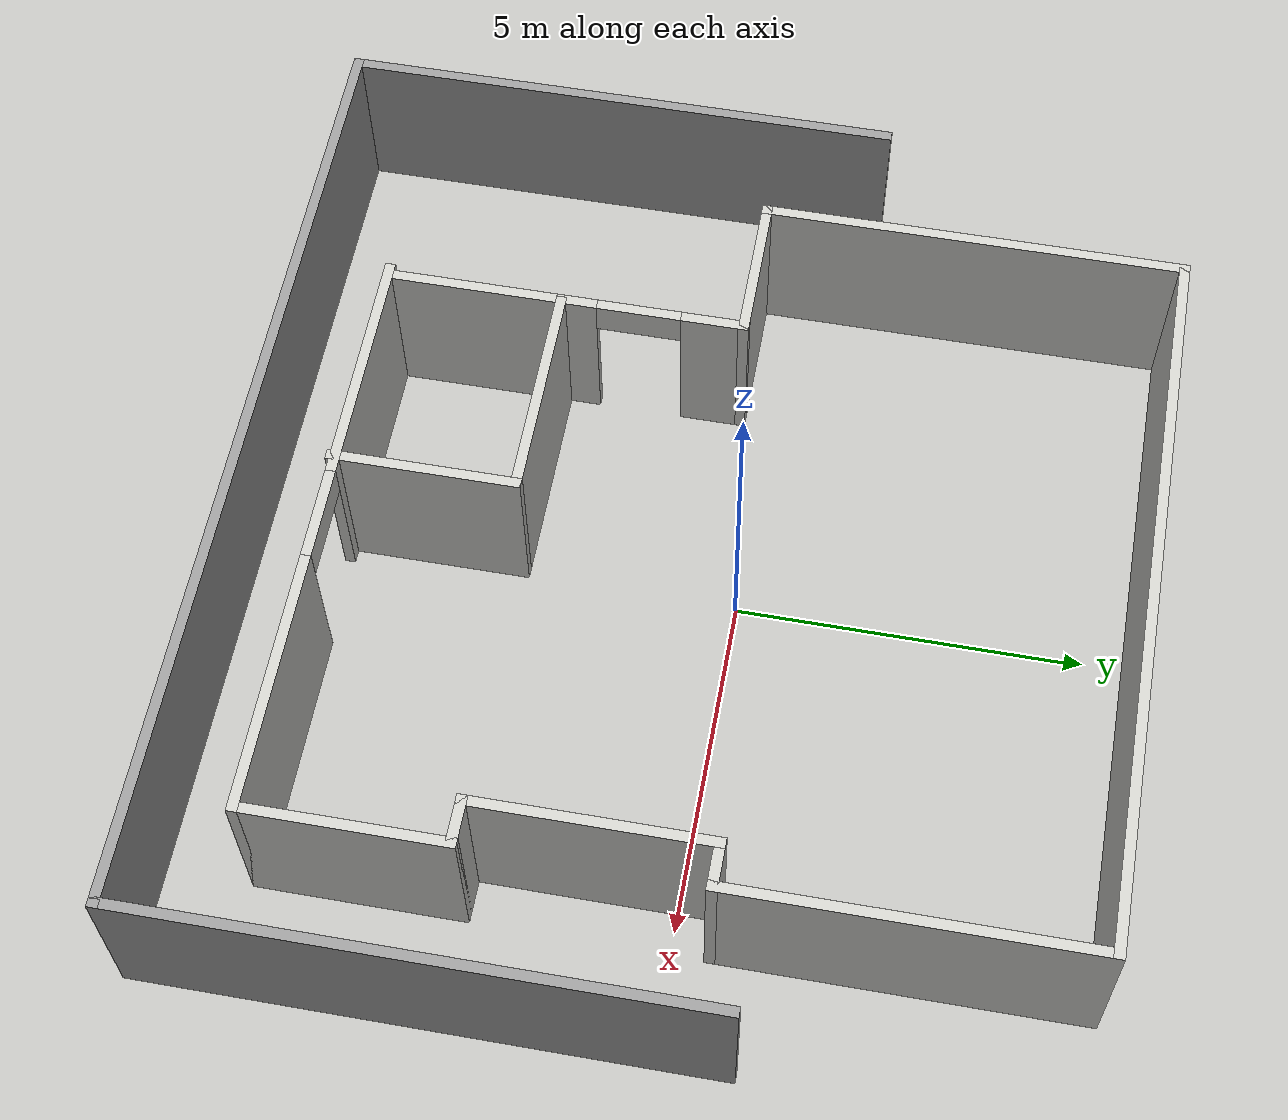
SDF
<?xml version='1.0'?>
<sdf version='1.6'>
  <model name='Genova_office'>
    <pose frame=''>-0.089095 -0.704867 0 0 -0 0</pose>
    <link name='Wall_0'>
      <pose frame=''>-3.14346 -2.31697 0 0 -0 1.5708</pose>
      <visual name='Wall_0_Visual_0'>
        <pose frame=''>-1.10322 0 1.25 0 -0 0</pose>
        <geometry>
          <box>
            <size>3.04356 0.15 2.5</size>
          </box>
        </geometry>
        <material>
          <script>
            <uri>file://media/materials/scripts/gazebo.material</uri>
            <name>Gazebo/CeilingTiled</name>
          </script>
          <ambient>1 1 1 1</ambient>
        </material>
        <meta>
          <layer>0</layer>
        </meta>
      </visual>
      <collision name='Wall_0_Collision_0'>
        <geometry>
          <box>
            <size>3.04356 0.15 2.5</size>
          </box>
        </geometry>
        <pose frame=''>-1.10322 0 1.25 0 -0 0</pose>
      </collision>
      <visual name='Wall_0_Visual_1'>
        <pose frame=''>2.13278 0 1.25 0 -0 0</pose>
        <geometry>
          <box>
            <size>0.984438 0.15 2.5</size>
          </box>
        </geometry>
        <material>
          <script>
            <uri>file://media/materials/scripts/gazebo.material</uri>
            <name>Gazebo/CeilingTiled</name>
          </script>
          <ambient>1 1 1 1</ambient>
        </material>
        <meta>
          <layer>0</layer>
        </meta>
      </visual>
      <collision name='Wall_0_Collision_1'>
        <geometry>
          <box>
            <size>0.984438 0.15 2.5</size>
          </box>
        </geometry>
        <pose frame=''>2.13278 0 1.25 0 -0 0</pose>
      </collision>
      <visual name='Wall_0_Visual_2'>
        <pose frame=''>1.02956 0 2.25 0 -0 0</pose>
        <geometry>
          <box>
            <size>1.222 0.15 0.5</size>
          </box>
        </geometry>
        <material>
          <script>
            <uri>file://media/materials/scripts/gazebo.material</uri>
            <name>Gazebo/CeilingTiled</name>
          </script>
          <ambient>1 1 1 1</ambient>
        </material>
        <meta>
          <layer>0</layer>
        </meta>
      </visual>
      <collision name='Wall_0_Collision_2'>
        <geometry>
          <box>
            <size>1.222 0.15 0.5</size>
          </box>
        </geometry>
        <pose frame=''>1.02956 0 2.25 0 -0 0</pose>
      </collision>
    </link>
    <link name='Wall_1'>
      <collision name='Wall_1_Collision'>
        <geometry>
          <box>
            <size>2.25 0.15 2.5</size>
          </box>
        </geometry>
        <pose frame=''>0 0 1.25 0 -0 0</pose>
      </collision>
      <visual name='Wall_1_Visual'>
        <pose frame=''>0 0 1.25 0 -0 0</pose>
        <geometry>
          <box>
            <size>2.25 0.15 2.5</size>
          </box>
        </geometry>
        <material>
          <script>
            <uri>file://media/materials/scripts/gazebo.material</uri>
            <name>Gazebo/CeilingTiled</name>
          </script>
          <ambient>1 1 1 1</ambient>
        </material>
        <meta>
          <layer>0</layer>
        </meta>
      </visual>
      <pose frame=''>-4.19346 0.233027 0 0 -0 3.14159</pose>
    </link>
    <link name='Wall_11'>
      <collision name='Wall_11_Collision'>
        <geometry>
          <box>
            <size>3.25 0.15 2.5</size>
          </box>
        </geometry>
        <pose frame=''>0 0 1.25 0 -0 0</pose>
      </collision>
      <visual name='Wall_11_Visual'>
        <pose frame=''>0 0 1.25 0 -0 0</pose>
        <geometry>
          <box>
            <size>3.25 0.15 2.5</size>
          </box>
        </geometry>
        <material>
          <script>
            <uri>file://media/materials/scripts/gazebo.material</uri>
            <name>Gazebo/CeilingTiled</name>
          </script>
          <ambient>1 1 1 1</ambient>
        </material>
        <meta>
          <layer>0</layer>
        </meta>
      </visual>
      <pose frame=''>-1.55848 -2.41837 0 0 -0 0</pose>
    </link>
    <link name='Wall_12'>
      <collision name='Wall_12_Collision'>
        <geometry>
          <box>
            <size>2.75 0.15 2.5</size>
          </box>
        </geometry>
        <pose frame=''>0 0 1.25 0 -0 0</pose>
      </collision>
      <visual name='Wall_12_Visual'>
        <pose frame=''>0 0 1.25 0 -0 0</pose>
        <geometry>
          <box>
            <size>2.75 0.15 2.5</size>
          </box>
        </geometry>
        <material>
          <script>
            <uri>file://media/materials/scripts/gazebo.material</uri>
            <name>Gazebo/CeilingTiled</name>
          </script>
          <ambient>1 1 1 1</ambient>
        </material>
        <meta>
          <layer>0</layer>
        </meta>
      </visual>
      <pose frame=''>-0.008479 -3.71836 0 0 -0 -1.5708</pose>
    </link>
    <link name='Wall_14'>
      <collision name='Wall_14_Collision'>
        <geometry>
          <box>
            <size>8.25 0.15 2.5</size>
          </box>
        </geometry>
        <pose frame=''>0 0 1.25 0 -0 0</pose>
      </collision>
      <visual name='Wall_14_Visual'>
        <pose frame=''>0 0 1.25 0 -0 0</pose>
        <geometry>
          <box>
            <size>8.25 0.15 2.5</size>
          </box>
        </geometry>
        <material>
          <script>
            <uri>file://media/materials/scripts/gazebo.material</uri>
            <name>Gazebo/Grey</name>
          </script>
          <ambient>1 1 1 1</ambient>
        </material>
        <meta>
          <layer>0</layer>
        </meta>
      </visual>
      <pose frame=''>-6.925 -2.28303 0 0 -0 -1.5708</pose>
    </link>
    <link name='Wall_15'>
      <collision name='Wall_15_Collision'>
        <geometry>
          <box>
            <size>14 0.15 2.5</size>
          </box>
        </geometry>
        <pose frame=''>0 0 1.25 0 -0 0</pose>
      </collision>
      <visual name='Wall_15_Visual'>
        <pose frame=''>0 0 1.25 0 -0 0</pose>
        <geometry>
          <box>
            <size>14 0.15 2.5</size>
          </box>
        </geometry>
        <material>
          <script>
            <uri>file://media/materials/scripts/gazebo.material</uri>
            <name>Gazebo/Grey</name>
          </script>
          <ambient>1 1 1 1</ambient>
        </material>
        <meta>
          <layer>0</layer>
        </meta>
      </visual>
      <pose frame=''>0 -6.33303 0 0 -0 0</pose>
    </link>
    <link name='Wall_16'>
      <collision name='Wall_16_Collision'>
        <geometry>
          <box>
            <size>8.25 0.15 2.5</size>
          </box>
        </geometry>
        <pose frame=''>0 0 1.25 0 -0 0</pose>
      </collision>
      <visual name='Wall_16_Visual'>
        <pose frame=''>0 0 1.25 0 -0 0</pose>
        <geometry>
          <box>
            <size>8.25 0.15 2.5</size>
          </box>
        </geometry>
        <material>
          <script>
            <uri>file://media/materials/scripts/gazebo.material</uri>
            <name>Gazebo/Grey</name>
          </script>
          <ambient>1 1 1 1</ambient>
        </material>
        <meta>
          <layer>0</layer>
        </meta>
      </visual>
      <pose frame=''>6.925 -2.28303 0 0 -0 1.5708</pose>
    </link>
    <link name='Wall_2'>
      <collision name='Wall_2_Collision'>
        <geometry>
          <box>
            <size>6.25 0.15 2.5</size>
          </box>
        </geometry>
        <pose frame=''>0 0 1.25 0 -0 0</pose>
      </collision>
      <visual name='Wall_2_Visual'>
        <pose frame=''>0 0 1.25 0 -0 0</pose>
        <geometry>
          <box>
            <size>6.25 0.15 2.5</size>
          </box>
        </geometry>
        <material>
          <script>
            <uri>file://media/materials/scripts/gazebo.material</uri>
            <name>Gazebo/CeilingTiled</name>
          </script>
          <ambient>1 1 1 1</ambient>
        </material>
        <meta>
          <layer>0</layer>
        </meta>
      </visual>
      <pose frame=''>-5.24346 3.28303 0 0 -0 1.5708</pose>
    </link>
    <link name='Wall_3'>
      <collision name='Wall_3_Collision'>
        <geometry>
          <box>
            <size>10.75 0.15 2.5</size>
          </box>
        </geometry>
        <pose frame=''>0 0 1.25 0 -0 0</pose>
      </collision>
      <visual name='Wall_3_Visual'>
        <pose frame=''>0 0 1.25 0 -0 0</pose>
        <geometry>
          <box>
            <size>10.75 0.15 2.5</size>
          </box>
        </geometry>
        <material>
          <script>
            <uri>file://media/materials/scripts/gazebo.material</uri>
            <name>Gazebo/CeilingTiled</name>
          </script>
          <ambient>1 1 1 1</ambient>
        </material>
        <meta>
          <layer>0</layer>
        </meta>
      </visual>
      <pose frame=''>0.05654 6.33303 0 0 -0 0</pose>
    </link>
    <link name='Wall_4'>
      <collision name='Wall_4_Collision'>
        <geometry>
          <box>
            <size>5.25 0.15 2.5</size>
          </box>
        </geometry>
        <pose frame=''>0 0 1.25 0 -0 0</pose>
      </collision>
      <visual name='Wall_4_Visual'>
        <pose frame=''>0 0 1.25 0 -0 0</pose>
        <geometry>
          <box>
            <size>5.25 0.15 2.5</size>
          </box>
        </geometry>
        <material>
          <script>
            <uri>file://media/materials/scripts/gazebo.material</uri>
            <name>Gazebo/CeilingTiled</name>
          </script>
          <ambient>1 1 1 1</ambient>
        </material>
        <meta>
          <layer>0</layer>
        </meta>
      </visual>
      <pose frame=''>5.35654 3.78303 0 0 -0 -1.5708</pose>
    </link>
    <link name='Wall_5'>
      <collision name='Wall_5_Collision'>
        <geometry>
          <box>
            <size>0.75 0.15 2.5</size>
          </box>
        </geometry>
        <pose frame=''>0 0 1.25 0 -0 0</pose>
      </collision>
      <visual name='Wall_5_Visual'>
        <pose frame=''>0 0 1.25 0 -0 0</pose>
        <geometry>
          <box>
            <size>0.75 0.15 2.5</size>
          </box>
        </geometry>
        <material>
          <script>
            <uri>file://media/materials/scripts/gazebo.material</uri>
            <name>Gazebo/CeilingTiled</name>
          </script>
          <ambient>1 1 1 1</ambient>
        </material>
        <meta>
          <layer>0</layer>
        </meta>
      </visual>
      <pose frame=''>5.05654 1.23303 0 0 -0 3.14159</pose>
    </link>
    <link name='Wall_6'>
      <collision name='Wall_6_Collision'>
        <geometry>
          <box>
            <size>3.5 0.15 2.5</size>
          </box>
        </geometry>
        <pose frame=''>0 0 1.25 0 -0 0</pose>
      </collision>
      <visual name='Wall_6_Visual'>
        <pose frame=''>0 0 1.25 0 -0 0</pose>
        <geometry>
          <box>
            <size>3.5 0.15 2.5</size>
          </box>
        </geometry>
        <material>
          <script>
            <uri>file://media/materials/scripts/gazebo.material</uri>
            <name>Gazebo/CeilingTiled</name>
          </script>
          <ambient>1 1 1 1</ambient>
        </material>
        <meta>
          <layer>0</layer>
        </meta>
      </visual>
      <pose frame=''>4.75654 -0.441973 0 0 -0 -1.5708</pose>
    </link>
    <link name='Wall_7'>
      <collision name='Wall_7_Collision'>
        <geometry>
          <box>
            <size>0.75 0.15 2.5</size>
          </box>
        </geometry>
        <pose frame=''>0 0 1.25 0 -0 0</pose>
      </collision>
      <visual name='Wall_7_Visual'>
        <pose frame=''>0 0 1.25 0 -0 0</pose>
        <geometry>
          <box>
            <size>0.75 0.15 2.5</size>
          </box>
        </geometry>
        <material>
          <script>
            <uri>file://media/materials/scripts/gazebo.material</uri>
            <name>Gazebo/CeilingTiled</name>
          </script>
          <ambient>1 1 1 1</ambient>
        </material>
        <meta>
          <layer>0</layer>
        </meta>
      </visual>
      <pose frame=''>5.05654 -2.11697 0 0 -0 0</pose>
    </link>
    <link name='Wall_8'>
      <collision name='Wall_8_Collision'>
        <geometry>
          <box>
            <size>3 0.15 2.5</size>
          </box>
        </geometry>
        <pose frame=''>0 0 1.25 0 -0 0</pose>
      </collision>
      <visual name='Wall_8_Visual'>
        <pose frame=''>0 0 1.25 0 -0 0</pose>
        <geometry>
          <box>
            <size>3 0.15 2.5</size>
          </box>
        </geometry>
        <material>
          <script>
            <uri>file://media/materials/scripts/gazebo.material</uri>
            <name>Gazebo/CeilingTiled</name>
          </script>
          <ambient>1 1 1 1</ambient>
        </material>
        <meta>
          <layer>0</layer>
        </meta>
      </visual>
      <pose frame=''>5.35654 -3.54197 0 0 -0 -1.5708</pose>
    </link>
    <link name='Wall_9'>
      <pose frame=''>1.05654 -4.96697 0 0 -0 3.14159</pose>
      <visual name='Wall_9_Visual_0'>
        <pose frame=''>-2.46552 0 1.25 0 -0 0</pose>
        <geometry>
          <box>
            <size>3.81895 0.15 2.5</size>
          </box>
        </geometry>
        <material>
          <script>
            <uri>file://media/materials/scripts/gazebo.material</uri>
            <name>Gazebo/CeilingTiled</name>
          </script>
          <ambient>1 1 1 1</ambient>
        </material>
        <meta>
          <layer>0</layer>
        </meta>
      </visual>
      <collision name='Wall_9_Collision_0'>
        <geometry>
          <box>
            <size>3.81895 0.15 2.5</size>
          </box>
        </geometry>
        <pose frame=''>-2.46552 0 1.25 0 -0 0</pose>
      </collision>
      <visual name='Wall_9_Visual_1'>
        <pose frame=''>2.58948 0 1.25 0 -0 0</pose>
        <geometry>
          <box>
            <size>3.57104 0.15 2.5</size>
          </box>
        </geometry>
        <material>
          <script>
            <uri>file://media/materials/scripts/gazebo.material</uri>
            <name>Gazebo/CeilingTiled</name>
          </script>
          <ambient>1 1 1 1</ambient>
        </material>
        <meta>
          <layer>0</layer>
        </meta>
      </visual>
      <collision name='Wall_9_Collision_1'>
        <geometry>
          <box>
            <size>3.57104 0.15 2.5</size>
          </box>
        </geometry>
        <pose frame=''>2.58948 0 1.25 0 -0 0</pose>
      </collision>
      <visual name='Wall_9_Visual_2'>
        <pose frame=''>0.123955 0 2.25 0 -0 0</pose>
        <geometry>
          <box>
            <size>1.36 0.15 0.5</size>
          </box>
        </geometry>
        <material>
          <script>
            <uri>file://media/materials/scripts/gazebo.material</uri>
            <name>Gazebo/CeilingTiled</name>
          </script>
          <ambient>1 1 1 1</ambient>
        </material>
        <meta>
          <layer>0</layer>
        </meta>
      </visual>
      <collision name='Wall_9_Collision_2'>
        <geometry>
          <box>
            <size>1.36 0.15 0.5</size>
          </box>
        </geometry>
        <pose frame=''>0.123955 0 2.25 0 -0 0</pose>
      </collision>
    </link>
    <static>1</static>
  </model>
</sdf>
